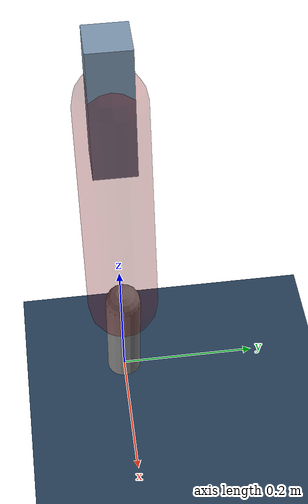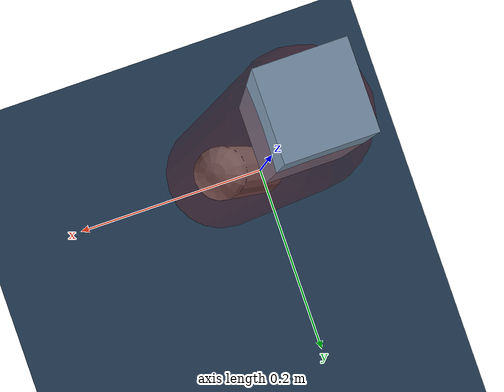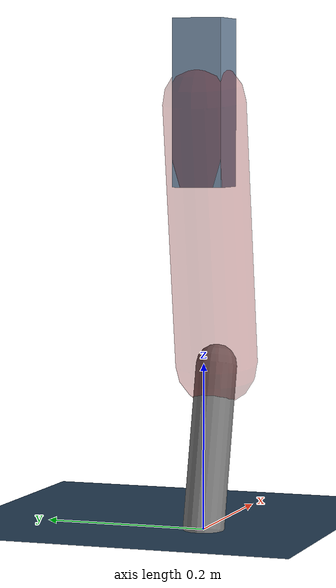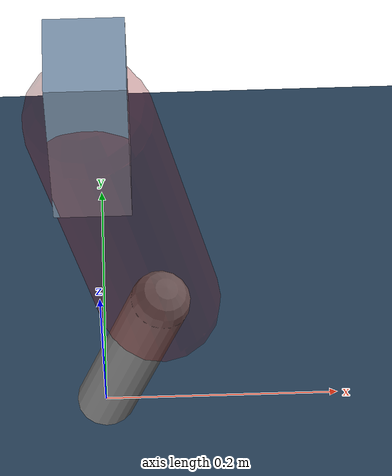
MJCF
<mujoco model="Hopper2D">
	<compiler inertiafromgeom="true" angle="radian" />
	<option timestep="0.001" integrator="implicit" cone="elliptic" solver="Newton" tolerance="1e-10" />

	<default>
		<geom contype="1" conaffinity="1" condim="3" friction="2 0.005 0.0001" solref="0.005 1" />
		<joint limited="true" damping="0.1" />
	</default>

	<asset>
		<texture name="skybox" type="skybox" builtin="gradient" rgb1=".4 .6 .8" rgb2="0 0 0" width="800" height="800" />
		<texture name="grid" type="2d" builtin="checker" rgb1=".1 .2 .3" rgb2=".2 .3 .4" width="300" height="300" mark="edge" markrgb=".2 .3 .4" />
		<material name="ground" texture="grid" texrepeat="1 1" texuniform="true" reflectance="0.1" />
		<material name="leg" rgba="0.5 0.6 0.7 1" />
	</asset>

	<worldbody>

		<geom name="floor" type="plane" size="5 5 0.25" material="ground" />

		<light directional="false" diffuse="0.8 0.8 0.8" specular="0.3 0.3 0.3" pos="0 0 2" dir="0 0 -1" />
		<light mode="targetbodycom" target="base" directional="false" diffuse="0.8 0.8 0.8" specular="0.3 0.3 0.3" pos="0 0 2" dir="0 0 -1" />

		<camera name="fixed" pos="0 -2 1" xyaxes="1 0 0 0 0 1" />
		<camera name="tracking" mode="trackcom" pos="0 -3 1" />

		<body name="root" pos="0 0 0.5121588325199504">
			<joint name="slide_x" type="slide" axis="1 0 0" range="-100 100" />
			<joint name="slide_z" type="slide" axis="0 0 1" range="0 10" />

			<body name="base" pos="0 0 0">
				<geom name="torso" type="box" size="0.03 0.03 0.1" mass="2.231" material="leg" />

				<body name="link1" pos="0 0 0" euler="0 1.4163438974675142 0">
					<joint type="hinge" axis="0 -1 0" pos="0 0 0" name="hinge1" limited="true" range="-3.14 3.14" stiffness="0" damping="0.1" />
					<geom name="thigh" type="capsule" fromto="0 0 0 0.32128089394518844 0 0" size="0.05" rgba="0.5 0 0 0.3" mass="1.0467584136520087" />

					<body name="link2" pos="0.32128089394518844 0 0" euler="0 0.4030528998470435 0">
						<joint type="hinge" axis="0 -1 0" pos="0 0 0" name="hinge2" limited="true" range="-3.14 3.14" stiffness="0" damping="0.1" />
						<geom name="shank" type="capsule" fromto="0 0 0 0.20087793857476194 0 0" size="0.025" mass="0.40160235085980955" />

					</body>
				</body>
			</body>
		</body>
	</worldbody>

	<actuator>
		<motor name="torque1" joint="hinge1" ctrlrange="-65.44017294696575 65.44017294696575" ctrllimited="true" gear="1" />
		<motor name="torque2" joint="hinge2" ctrlrange="-95.04068561436623 95.04068561436623" ctrllimited="true" gear="1" />
	</actuator>
</mujoco>
